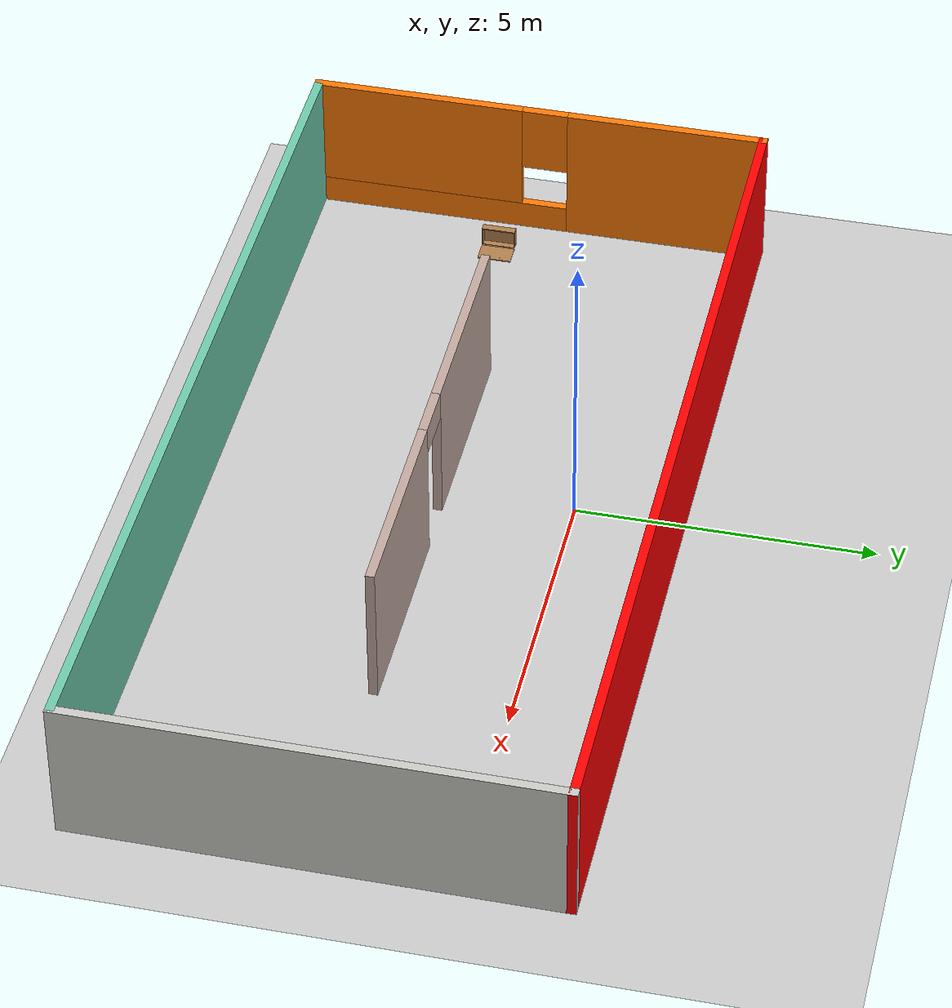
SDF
<sdf version="1.6">
 <world name="default">
  <model name="ground_plane">
   <static>1</static>
   <link name="link">
    <collision name="collision">
     <geometry><plane><normal>0 0 1</normal><size>100 100</size></plane></geometry>
     <surface><friction><ode><mu>100</mu><mu2>50</mu2></ode></friction></surface>
    </collision>
    <visual name="visual">
     <cast_shadows>0</cast_shadows>
     <geometry><plane><normal>0 0 1</normal><size>100 100</size></plane></geometry>
     <material>
      <script><uri>file://media/materials/scripts/gazebo.material</uri><name>Gazebo/Grey</name></script>
     </material>
    </visual>
   </link>
  </model>
  <model name="Project4b">
   <pose>0.70113 -2.15457 0 0 -0 0</pose>
   <link name="Wall_0">
    <pose>-7.925 0 0 0 0 -1.5708</pose>
    <visual name="Wall_0_Visual_0">
     <pose>-2.25608 0 1.25 0 -0 0</pose>
     <geometry><box><size>3.48783 0.15 2.5</size></box></geometry>
     <material>
      <script><uri>file://media/materials/scripts/gazebo.material</uri><name>Gazebo/Grey</name></script>
      <ambient>0.996078 0.47451 0.0196078 1</ambient>
     </material>
     <meta><layer>0</layer></meta>
    </visual>
    <collision name="Wall_0_Collision_0">
     <geometry><box><size>3.48783 0.15 2.5</size></box></geometry>
     <pose>-2.25608 0 1.25 0 -0 0</pose>
    </collision>
    <visual name="Wall_0_Visual_1">
     <pose>1.74392 0 0.25 0 -0 0</pose>
     <geometry><box><size>4.51217 0.15 0.5</size></box></geometry>
     <material>
      <script><uri>file://media/materials/scripts/gazebo.material</uri><name>Gazebo/Grey</name></script>
      <ambient>0.996078 0.47451 0.0196078 1</ambient>
     </material>
     <meta><layer>0</layer></meta>
    </visual>
    <collision name="Wall_0_Collision_1">
     <geometry><box><size>4.51217 0.15 0.5</size></box></geometry>
     <pose>1.74392 0 0.25 0 -0 0</pose>
    </collision>
    <visual name="Wall_0_Visual_2">
     <pose>2.14392 0 1.5 0 -0 0</pose>
     <geometry><box><size>3.71217 0.15 2</size></box></geometry>
     <material>
      <script><uri>file://media/materials/scripts/gazebo.material</uri><name>Gazebo/Grey</name></script>
      <ambient>0.996078 0.47451 0.0196078 1</ambient>
     </material>
     <meta><layer>0</layer></meta>
    </visual>
    <collision name="Wall_0_Collision_2">
     <geometry><box><size>3.71217 0.15 2</size></box></geometry>
     <pose>2.14392 0 1.5 0 -0 0</pose>
    </collision>
    <visual name="Wall_0_Visual_3">
     <pose>-0.112166 0 1.9 0 -0 0</pose>
     <geometry><box><size>0.8 0.15 1.2</size></box></geometry>
     <material>
      <script><uri>file://media/materials/scripts/gazebo.material</uri><name>Gazebo/Grey</name></script>
      <ambient>0.996078 0.47451 0.0196078 1</ambient>
     </material>
     <meta><layer>0</layer></meta>
    </visual>
    <collision name="Wall_0_Collision_3">
     <geometry><box><size>0.8 0.15 1.2</size></box></geometry>
     <pose>-0.112166 0 1.9 0 -0 0</pose>
    </collision>
   </link>
   <link name="Wall_1">
    <collision name="Wall_1_Collision">
     <geometry><box><size>16 0.15 2.5</size></box></geometry>
     <pose>0 0 1.25 0 -0 0</pose>
    </collision>
    <visual name="Wall_1_Visual">
     <pose>0 0 1.25 0 -0 0</pose>
     <geometry><box><size>16 0.15 2.5</size></box></geometry>
     <material>
      <script><uri>file://media/materials/scripts/gazebo.material</uri><name>Gazebo/Grey</name></script>
      <ambient>0.435294 0.796078 0.67451 1</ambient>
     </material>
     <meta><layer>0</layer></meta>
    </visual>
    <pose>0 -3.925 0 0 -0 0</pose>
   </link>
   <link name="Wall_2">
    <collision name="Wall_2_Collision">
     <geometry><box><size>8 0.15 2.5</size></box></geometry>
     <pose>0 0 1.25 0 -0 0</pose>
    </collision>
    <visual name="Wall_2_Visual">
     <pose>0 0 1.25 0 -0 0</pose>
     <geometry><box><size>8 0.15 2.5</size></box></geometry>
     <material>
      <script><uri>file://media/materials/scripts/gazebo.material</uri><name>Gazebo/CeilingTiled</name></script>
      <ambient>0 0 0.498039 1</ambient>
     </material>
     <meta><layer>0</layer></meta>
    </visual>
    <pose>7.925 0 0 0 -0 1.5708</pose>
   </link>
   <link name="Wall_3">
    <collision name="Wall_3_Collision">
     <geometry><box><size>16 0.15 2.5</size></box></geometry>
     <pose>0 0 1.25 0 -0 0</pose>
    </collision>
    <visual name="Wall_3_Visual">
     <pose>0 0 1.25 0 -0 0</pose>
     <geometry><box><size>16 0.15 2.5</size></box></geometry>
     <material>
      <script><uri>file://media/materials/scripts/gazebo.material</uri><name>Gazebo/Grey</name></script>
      <ambient>1 0 0 1</ambient>
     </material>
     <meta><layer>0</layer></meta>
    </visual>
    <pose>0 3.925 0 0 -0 3.14159</pose>
   </link>
   <link name="Wall_5">
    <pose>0.162635 -0.027754 0 0 -0 0</pose>
    <visual name="Wall_5_Visual_0">
     <pose>-2.19363 0 1.25 0 -0 0</pose>
     <geometry><box><size>3.61273 0.15 2.5</size></box></geometry>
     <material>
      <script><uri>file://media/materials/scripts/gazebo.material</uri><name>Gazebo/Grey</name></script>
      <ambient>0.760784 0.662745 0.627451 1</ambient>
     </material>
     <meta><layer>0</layer></meta>
    </visual>
    <collision name="Wall_5_Collision_0">
     <geometry><box><size>3.61273 0.15 2.5</size></box></geometry>
     <pose>-2.19363 0 1.25 0 -0 0</pose>
    </collision>
    <visual name="Wall_5_Visual_1">
     <pose>2.25637 0 1.25 0 -0 0</pose>
     <geometry><box><size>3.48727 0.15 2.5</size></box></geometry>
     <material>
      <script><uri>file://media/materials/scripts/gazebo.material</uri><name>Gazebo/Grey</name></script>
      <ambient>0.760784 0.662745 0.627451 1</ambient>
     </material>
     <meta><layer>0</layer></meta>
    </visual>
    <collision name="Wall_5_Collision_1">
     <geometry><box><size>3.48727 0.15 2.5</size></box></geometry>
     <pose>2.25637 0 1.25 0 -0 0</pose>
    </collision>
    <visual name="Wall_5_Visual_2">
     <pose>0.062734 0 2.25 0 -0 0</pose>
     <geometry><box><size>0.9 0.15 0.5</size></box></geometry>
     <material>
      <script><uri>file://media/materials/scripts/gazebo.material</uri><name>Gazebo/Grey</name></script>
      <ambient>0.760784 0.662745 0.627451 1</ambient>
     </material>
     <meta><layer>0</layer></meta>
    </visual>
    <collision name="Wall_5_Collision_2">
     <geometry><box><size>0.9 0.15 0.5</size></box></geometry>
     <pose>0.062734 0 2.25 0 -0 0</pose>
    </collision>
   </link>
   <static>1</static>
  </model>
  <model name="wooden_case">
   <link name="base">
    <pose>0 0 0.024 0 -0 0</pose>
    <inertial>
     <pose>-0.022184 0 0.171592 0 -0 0</pose>
     <mass>3.96264</mass>
     <inertia>
      <ixx>0.213536</ixx>
      <ixy>0</ixy>
      <ixz>0.000779377</ixz>
      <iyy>0.0708943</iyy>
      <iyz>0</iyz>
      <izz>0.154604</izz>
     </inertia>
    </inertial>
    <collision name="collision_back">
     <pose>-0.053975 0 0.1778 0 -0 0</pose>
     <geometry><box><size>0.01905 0.5461 0.3175</size></box></geometry>
     <surface>
      <contact>
       <poissons_ratio>0.347</poissons_ratio>
       <elastic_modulus>8.8e+09</elastic_modulus>
       <ode><kp>100000</kp><kd>100</kd><max_vel>100</max_vel><min_depth>0.001</min_depth></ode>
      </contact>
      <friction>
       <torsional>
        <coefficient>1</coefficient>
        <use_patch_radius>0</use_patch_radius>
        <surface_radius>0.01</surface_radius>
       </torsional>
      </friction>
     </surface>
    </collision>
    <visual name="visual_back">
     <pose>-0.053975 0 0.1778 0 -0 0</pose>
     <geometry><box><size>0.01905 0.5461 0.3175</size></box></geometry>
     <material>
      <script><uri>file://media/materials/scripts/gazebo.material</uri><name>Gazebo/Wood</name></script>
     </material>
    </visual>
    <collision name="collision_bottom">
     <pose>0 0 0.009525 0 -0 0</pose>
     <geometry><box><size>0.127 0.5842 0.01905</size></box></geometry>
     <surface>
      <contact>
       <poissons_ratio>0.347</poissons_ratio>
       <elastic_modulus>8.8e+09</elastic_modulus>
       <ode><kp>100000</kp><kd>100</kd><max_vel>100</max_vel><min_depth>0.001</min_depth></ode>
      </contact>
      <friction>
       <torsional>
        <coefficient>1</coefficient>
        <use_patch_radius>0</use_patch_radius>
        <surface_radius>0.01</surface_radius>
       </torsional>
      </friction>
     </surface>
    </collision>
    <visual name="visual_bottom">
     <pose>0 0 0.009525 0 -0 0</pose>
     <geometry><box><size>0.127 0.5842 0.01905</size></box></geometry>
     <material>
      <script><uri>file://media/materials/scripts/gazebo.material</uri><name>Gazebo/Wood</name></script>
     </material>
    </visual>
    <collision name="collision_top">
     <pose>0 0 0.346075 0 -0 0</pose>
     <geometry><box><size>0.127 0.5842 0.01905</size></box></geometry>
     <surface>
      <contact>
       <poissons_ratio>0.347</poissons_ratio>
       <elastic_modulus>8.8e+09</elastic_modulus>
       <ode><kp>100000</kp><kd>100</kd><max_vel>100</max_vel><min_depth>0.001</min_depth></ode>
      </contact>
      <friction>
       <torsional>
        <coefficient>1</coefficient>
        <use_patch_radius>0</use_patch_radius>
        <surface_radius>0.01</surface_radius>
       </torsional>
      </friction>
     </surface>
    </collision>
    <visual name="visual_top">
     <pose>0 0 0.346075 0 -0 0</pose>
     <geometry><box><size>0.127 0.5842 0.01905</size></box></geometry>
     <material>
      <script><uri>file://media/materials/scripts/gazebo.material</uri><name>Gazebo/Wood</name></script>
     </material>
    </visual>
    <collision name="collision_left">
     <pose>0 -0.282575 0.1778 0 -0 0</pose>
     <geometry><box><size>0.127 0.01905 0.3175</size></box></geometry>
     <surface>
      <contact>
       <poissons_ratio>0.347</poissons_ratio>
       <elastic_modulus>8.8e+09</elastic_modulus>
       <ode><kp>100000</kp><kd>100</kd><max_vel>100</max_vel><min_depth>0.001</min_depth></ode>
      </contact>
      <friction>
       <torsional>
        <coefficient>1</coefficient>
        <use_patch_radius>0</use_patch_radius>
        <surface_radius>0.01</surface_radius>
       </torsional>
      </friction>
     </surface>
    </collision>
    <visual name="visual_left">
     <pose>0 -0.282575 0.1778 0 -0 0</pose>
     <geometry><box><size>0.127 0.01905 0.3175</size></box></geometry>
     <material>
      <script><uri>file://media/materials/scripts/gazebo.material</uri><name>Gazebo/Wood</name></script>
     </material>
    </visual>
    <collision name="collision_right">
     <pose>0 0.282575 0.1778 0 -0 0</pose>
     <geometry><box><size>0.127 0.01905 0.3175</size></box></geometry>
     <surface>
      <contact>
       <poissons_ratio>0.347</poissons_ratio>
       <elastic_modulus>8.8e+09</elastic_modulus>
       <ode><kp>100000</kp><kd>100</kd><max_vel>100</max_vel><min_depth>0.001</min_depth></ode>
      </contact>
      <friction>
       <torsional>
        <coefficient>1</coefficient>
        <use_patch_radius>0</use_patch_radius>
        <surface_radius>0.01</surface_radius>
       </torsional>
      </friction>
     </surface>
    </collision>
    <visual name="visual_right">
     <pose>0 0.282575 0.1778 0 -0 0</pose>
     <geometry><box><size>0.127 0.01905 0.3175</size></box></geometry>
     <material>
      <script><uri>file://media/materials/scripts/gazebo.material</uri><name>Gazebo/Wood</name></script>
     </material>
    </visual>
    <collision name="collision_block_left">
     <pose>0.0095 -0.2151 -0.012 0 -0 0</pose>
     <geometry><box><size>0.108 0.05 0.024</size></box></geometry>
     <surface>
      <contact>
       <poissons_ratio>0.347</poissons_ratio>
       <elastic_modulus>8.8e+09</elastic_modulus>
       <ode><kp>100000</kp><kd>100</kd><max_vel>100</max_vel><min_depth>0.001</min_depth></ode>
      </contact>
      <friction>
       <torsional>
        <coefficient>1</coefficient>
        <use_patch_radius>0</use_patch_radius>
        <surface_radius>0.01</surface_radius>
       </torsional>
      </friction>
     </surface>
    </collision>
    <visual name="visual_block_left">
     <pose>0.0095 -0.2151 -0.012 0 -0 0</pose>
     <geometry><box><size>0.108 0.05 0.024</size></box></geometry>
     <material>
      <script><uri>file://media/materials/scripts/gazebo.material</uri><name>Gazebo/Wood</name></script>
     </material>
    </visual>
    <collision name="collision_block_right">
     <pose>0.0095 0.2151 -0.012 0 -0 0</pose>
     <geometry><box><size>0.108 0.05 0.024</size></box></geometry>
     <surface>
      <contact>
       <poissons_ratio>0.347</poissons_ratio>
       <elastic_modulus>8.8e+09</elastic_modulus>
       <ode><kp>100000</kp><kd>100</kd><max_vel>100</max_vel><min_depth>0.001</min_depth></ode>
      </contact>
      <friction>
       <torsional>
        <coefficient>1</coefficient>
        <use_patch_radius>0</use_patch_radius>
        <surface_radius>0.01</surface_radius>
       </torsional>
      </friction>
     </surface>
    </collision>
    <visual name="visual_block_right">
     <pose>0.0095 0.2151 -0.012 0 -0 0</pose>
     <geometry><box><size>0.108 0.05 0.024</size></box></geometry>
     <material>
      <script><uri>file://media/materials/scripts/gazebo.material</uri><name>Gazebo/Wood</name></script>
     </material>
    </visual>
   </link>
   <link name="lid">
    <pose>0.243775 0 0.009525 0 -0 0</pose>
    <inertial>
     <mass>1.97874</mass>
     <inertia>
      <ixx>0.0563367</ixx>
      <ixy>0</ixy>
      <ixz>0</ixz>
      <iyy>0.020911</iyy>
      <iyz>0</iyz>
      <izz>0.0771281</izz>
     </inertia>
    </inertial>
    <collision name="collision">
     <geometry><box><size>0.3556 0.5842 0.01905</size></box></geometry>
     <surface>
      <contact>
       <poissons_ratio>0.347</poissons_ratio>
       <elastic_modulus>8.8e+09</elastic_modulus>
       <ode><kp>100000</kp><kd>100</kd><max_vel>100</max_vel><min_depth>0.001</min_depth></ode>
      </contact>
      <friction>
       <torsional>
        <coefficient>1</coefficient>
        <use_patch_radius>0</use_patch_radius>
        <surface_radius>0.01</surface_radius>
       </torsional>
      </friction>
     </surface>
    </collision>
    <visual name="visual">
     <geometry><box><size>0.3556 0.5842 0.01905</size></box></geometry>
     <material>
      <script><uri>file://media/materials/scripts/gazebo.material</uri><name>Gazebo/Wood</name></script>
     </material>
    </visual>
    <visual name="tee_nut_1">
     <pose>0.122 -0.216 0 0 -0 0</pose>
     <geometry><cylinder><radius>0.00635</radius><length>0.0192405</length></cylinder></geometry>
     <material>
      <script><uri>file://media/materials/scripts/gazebo.material</uri><name>Gazebo/Grey</name></script>
     </material>
    </visual>
    <visual name="tee_nut_2">
     <pose>0.122 -0.088 0 0 -0 0</pose>
     <geometry><cylinder><radius>0.00635</radius><length>0.0192405</length></cylinder></geometry>
     <material>
      <script><uri>file://media/materials/scripts/gazebo.material</uri><name>Gazebo/Grey</name></script>
     </material>
    </visual>
    <visual name="tee_nut_3">
     <pose>0.122 0.088 0 0 -0 0</pose>
     <geometry><cylinder><radius>0.00635</radius><length>0.0192405</length></cylinder></geometry>
     <material>
      <script><uri>file://media/materials/scripts/gazebo.material</uri><name>Gazebo/Grey</name></script>
     </material>
    </visual>
    <visual name="tee_nut_4">
     <pose>0.122 0.216 0 0 -0 0</pose>
     <geometry><cylinder><radius>0.00635</radius><length>0.0192405</length></cylinder></geometry>
     <material>
      <script><uri>file://media/materials/scripts/gazebo.material</uri><name>Gazebo/Grey</name></script>
     </material>
    </visual>
   </link>
   <joint name="lid_hinge" type="revolute">
    <pose>-0.1778 0 0.01905 0 -0 0</pose>
    <parent>base</parent>
    <child>lid</child>
    <axis>
     <xyz>0 1 0</xyz>
     <limit><upper>0.523599</upper><lower>-1.5708</lower></limit>
     <use_parent_model_frame>0</use_parent_model_frame>
     <dynamics><spring_reference>0</spring_reference><spring_stiffness>0</spring_stiffness></dynamics>
    </axis>
   </joint>
   <pose>-6.50822 -2.71337 -0.001057 0 -0.000429 0</pose>
  </model>
 </world>
</sdf>
